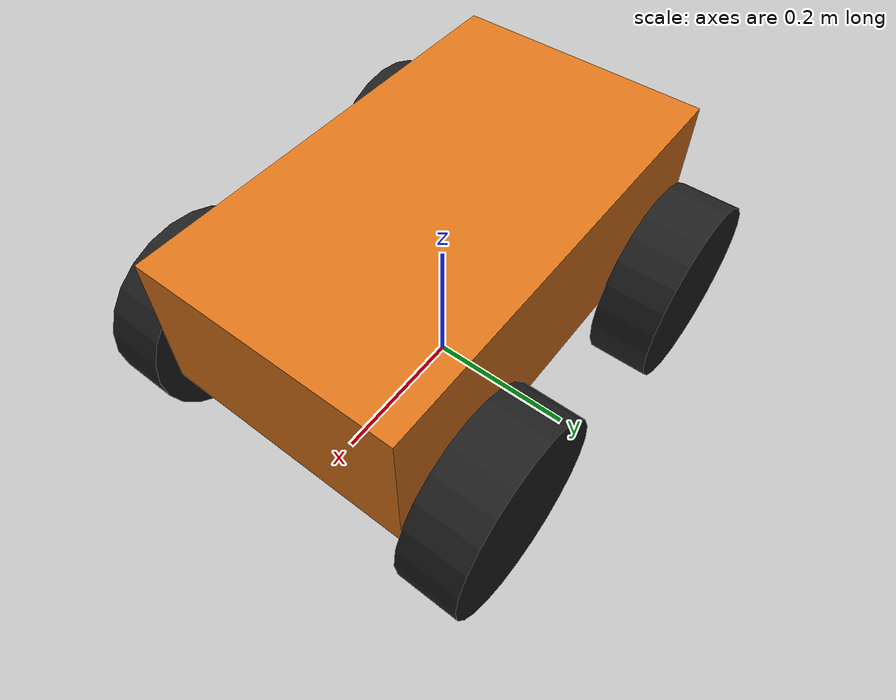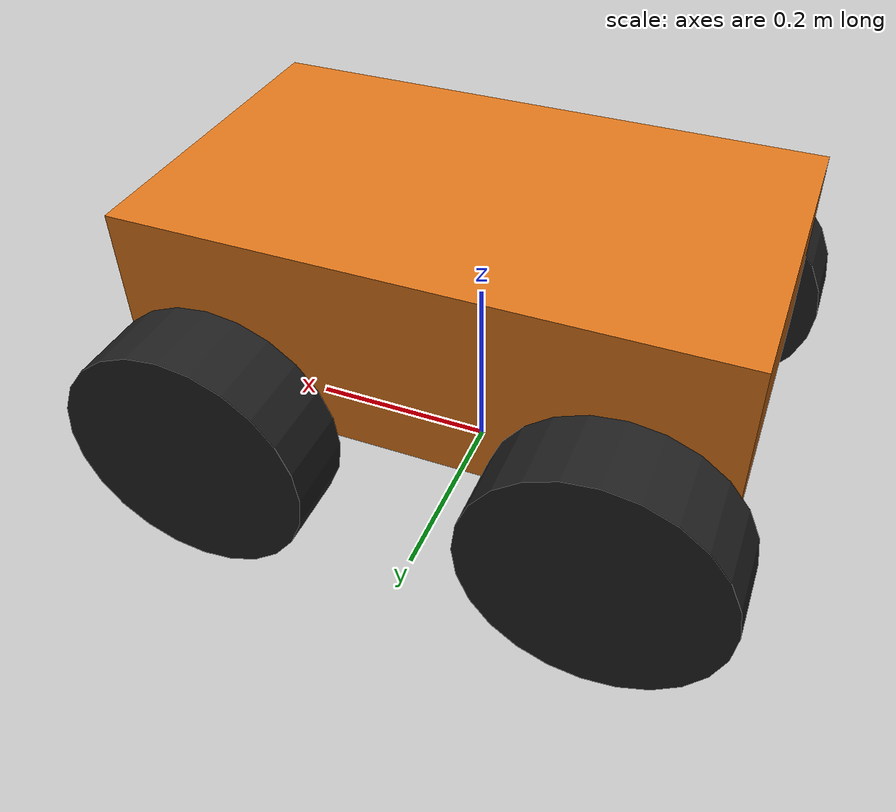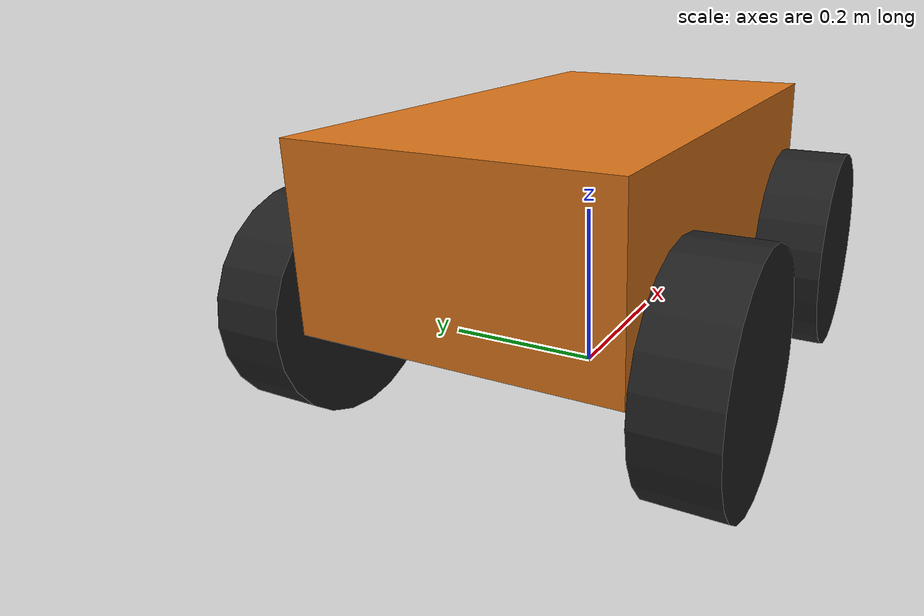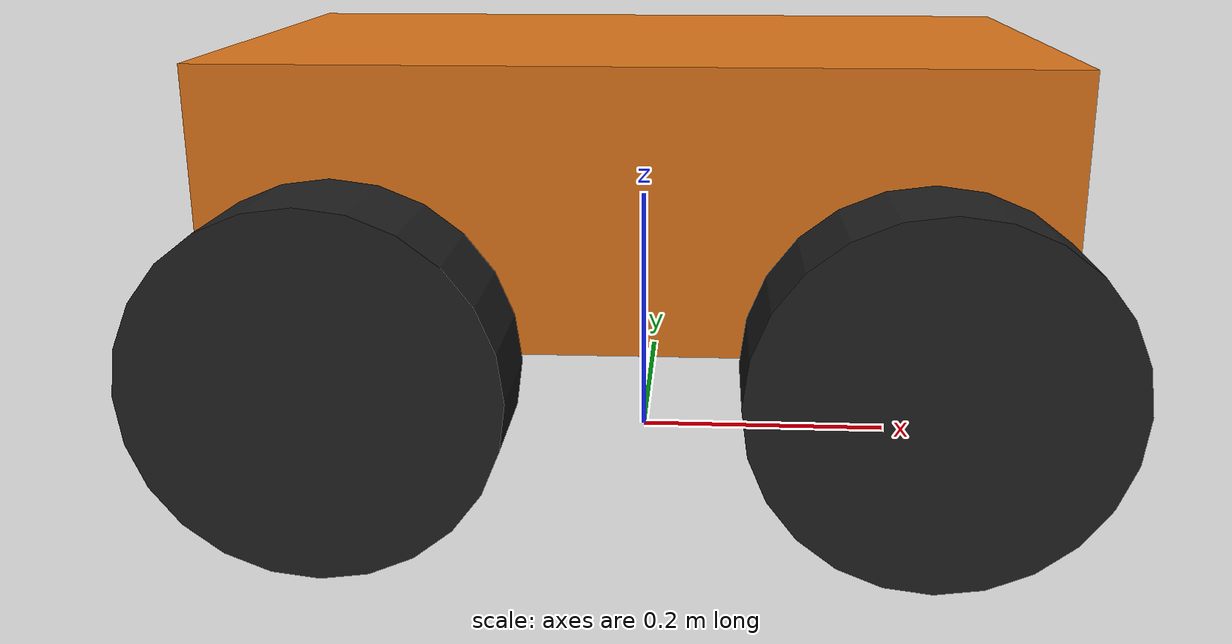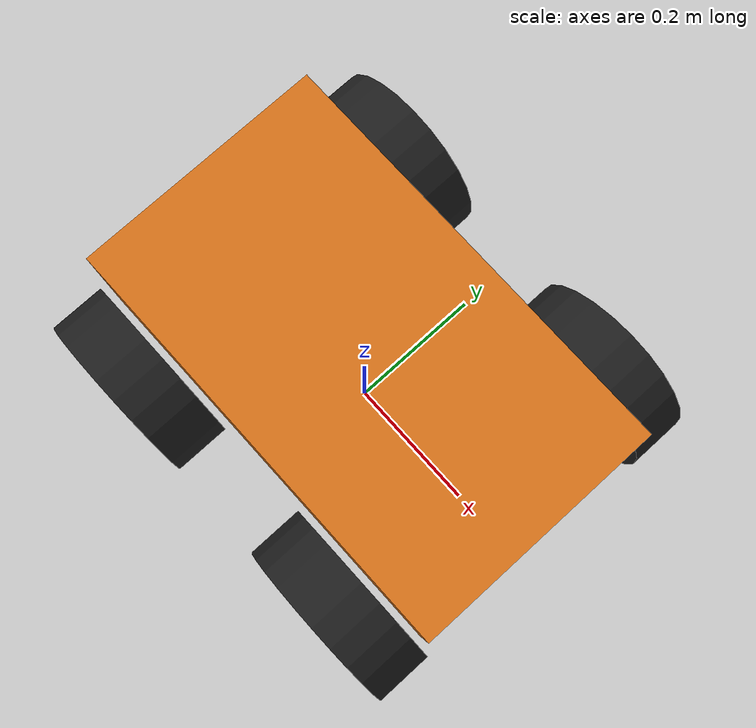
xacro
<?xml version="1.0"?>
<robot xmlns:xacro="http://www.ros.org/wiki/xacro" name="oroha">

  <!-- connection args; oroha_bringup/robot.launch.py injects the mdrobot_hardware
       section of the controllers yaml as key:=value, so the defaults here only
       matter when xacro is run by hand -->
  <xacro:arg name="use_mock_hardware" default="false"/>
  <xacro:arg name="port" default="/dev/oroha_md400"/>
  <xacro:arg name="baudrate" default="19200"/>
  <xacro:arg name="motor_id_L" default="2"/>
  <xacro:arg name="motor_id_R" default="1"/>
  <xacro:arg name="reverse_L" default="true"/>
  <xacro:arg name="reverse_R" default="false"/>
  <xacro:arg name="counts_per_rev_L" default="30.0"/>
  <xacro:arg name="counts_per_rev_R" default="30.0"/>
  <xacro:arg name="use_limit_sw" default="1"/>
  <xacro:arg name="auto_enable" default="true"/>

  <!-- measured (2026-09) -->
  <xacro:property name="track" value="0.451"/>          <!-- wheel-center to wheel-center -->
  <xacro:property name="wheel_radius" value="0.1258"/>  <!-- rolling diameter 251.6 mm under load -->
  <xacro:property name="wheel_width" value="0.080"/>    <!-- 3.00-4 pneumatic tyre -->
  <!-- PLACEHOLDER until measured. Outer footprint incl. tyres measured 0.80 x 0.53 m
       (T20261006-05); the chassis box and wheelbase themselves are still unmeasured -->
  <xacro:property name="wheelbase" value="0.400"/>      <!-- front-to-rear axle distance -->
  <xacro:property name="body_len" value="0.600"/>
  <xacro:property name="body_wid" value="0.350"/>
  <xacro:property name="body_hei" value="0.200"/>
  <xacro:property name="body_z" value="0.10"/>          <!-- body center above axle height -->

  <material name="oroha_body"><color rgba="0.85 0.45 0.10 1.0"/></material>
  <material name="oroha_tyre"><color rgba="0.12 0.12 0.12 1.0"/></material>

  <xacro:macro name="box_inertial" params="m x y z">
    <inertial>
      <mass value="${m}"/>
      <inertia ixx="${m*(y*y+z*z)/12}" iyy="${m*(x*x+z*z)/12}" izz="${m*(x*x+y*y)/12}"
               ixy="0" ixz="0" iyz="0"/>
    </inertial>
  </xacro:macro>

  <!-- ground projection: origin = center of the four contact points, x forward, z up -->
  <link name="base_footprint"/>

  <!-- body frame at axle height (diff_cont base_frame_id) -->
  <link name="base_link">
    <visual>
      <origin xyz="0 0 ${body_z}"/>
      <geometry><box size="${body_len} ${body_wid} ${body_hei}"/></geometry>
      <material name="oroha_body"/>
    </visual>
    <collision>
      <origin xyz="0 0 ${body_z}"/>
      <geometry><box size="${body_len} ${body_wid} ${body_hei}"/></geometry>
    </collision>
    <xacro:box_inertial m="20.0" x="${body_len}" y="${body_wid}" z="${body_hei}"/>
  </link>
  <joint name="base_joint" type="fixed">
    <parent link="base_footprint"/>
    <child link="base_link"/>
    <origin xyz="0 0 ${wheel_radius}" rpy="0 0 0"/>
  </joint>

  <!-- one link per side, two tyres each; joint rolls about +y -->
  <xacro:macro name="wheel_pair" params="name y">
    <link name="${name}">
      <visual>
        <origin xyz="${wheelbase/2} 0 0" rpy="${pi/2} 0 0"/>
        <geometry><cylinder radius="${wheel_radius}" length="${wheel_width}"/></geometry>
        <material name="oroha_tyre"/>
      </visual>
      <visual>
        <origin xyz="${-wheelbase/2} 0 0" rpy="${pi/2} 0 0"/>
        <geometry><cylinder radius="${wheel_radius}" length="${wheel_width}"/></geometry>
        <material name="oroha_tyre"/>
      </visual>
      <collision>
        <origin xyz="${wheelbase/2} 0 0" rpy="${pi/2} 0 0"/>
        <geometry><cylinder radius="${wheel_radius}" length="${wheel_width}"/></geometry>
      </collision>
      <collision>
        <origin xyz="${-wheelbase/2} 0 0" rpy="${pi/2} 0 0"/>
        <geometry><cylinder radius="${wheel_radius}" length="${wheel_width}"/></geometry>
      </collision>
      <inertial>
        <mass value="2.0"/>
        <inertia ixx="0.02" iyy="0.02" izz="0.02" ixy="0" ixz="0" iyz="0"/>
      </inertial>
    </link>
  </xacro:macro>
  <xacro:wheel_pair name="left_wheels" y="${track/2}"/>
  <xacro:wheel_pair name="right_wheels" y="${-track/2}"/>

  <!-- joint names are the ros2_control joint names used in oroha_controllers.yaml -->
  <joint name="motor_L" type="continuous">
    <parent link="base_link"/>
    <child link="left_wheels"/>
    <origin xyz="0 ${track/2} 0" rpy="0 0 0"/>
    <axis xyz="0 1 0"/>
  </joint>
  <joint name="motor_R" type="continuous">
    <parent link="base_link"/>
    <child link="right_wheels"/>
    <origin xyz="0 ${-track/2} 0" rpy="0 0 0"/>
    <axis xyz="0 1 0"/>
  </joint>

  <link name="imu_link"/>
  <joint name="imu_joint" type="fixed">
    <parent link="base_link"/>
    <child link="imu_link"/>
    <origin xyz="0 0 ${body_z + body_hei/2}" rpy="0 0 0"/>
  </joint>

  <!-- GT marker mount: PLACEHOLDER, defined together with the GT program -->
  <link name="marker_link"/>
  <joint name="marker_joint" type="fixed">
    <parent link="base_link"/>
    <child link="marker_link"/>
    <origin xyz="0 0 ${body_z + body_hei/2 + 0.05}" rpy="0 0 0"/>
  </joint>

  <xacro:include filename="$(find oroha_description)/urdf/oroha.ros2_control.xacro"/>
  <xacro:oroha_ros2_control name="oroha_base"/>
</robot>
